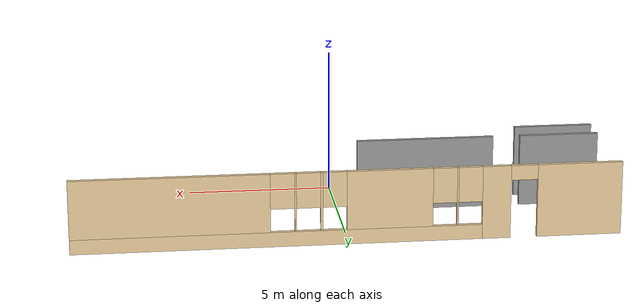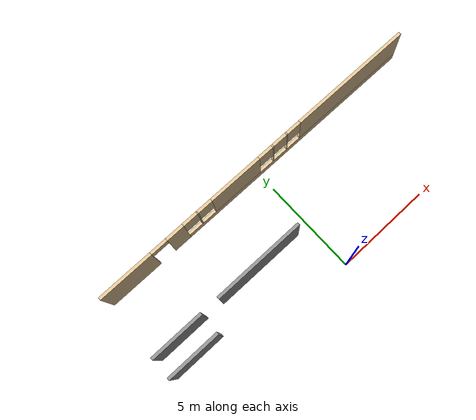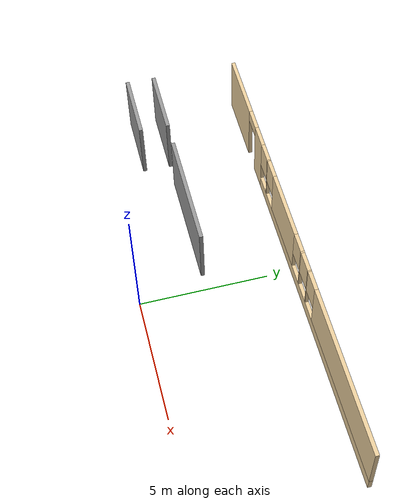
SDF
<sdf version="1.6">
 <model name="melgar_house">
  <link name="Wall_44">
   <pose>0.00354 6.025 0 0 -0 0</pose>
   <visual name="Wall_44_Visual_0">
    <pose>-7.72215 0 1.25 0 -0 0</pose>
    <geometry><box><size>2.85569 0.15 2.5</size></box></geometry>
    <material>
     <script><uri>file://media/materials/scripts/gazebo.material</uri><name>Gazebo/Grey</name></script>
     <ambient>0.921569 0.807843 0.615686 1</ambient>
     <shader type="pixel"/>
     <diffuse>0.7 0.7 0.7 1</diffuse>
     <specular>0.01 0.01 0.01 1</specular>
     <emissive>0 0 0 1</emissive>
    </material>
    <meta><layer>0</layer></meta>
   </visual>
   <visual name="Wall_44_Visual_1">
    <pose>-4.91854 0 1.25 0 -0 0</pose>
    <geometry><box><size>0.951528 0.15 2.5</size></box></geometry>
    <material>
     <script><uri>file://media/materials/scripts/gazebo.material</uri><name>Gazebo/Grey</name></script>
     <ambient>0.921569 0.807843 0.615686 1</ambient>
     <shader type="pixel"/>
     <diffuse>0.7 0.7 0.7 1</diffuse>
     <specular>0.01 0.01 0.01 1</specular>
     <emissive>0 0 0 1</emissive>
    </material>
    <meta><layer>0</layer></meta>
   </visual>
   <visual name="Wall_44_Visual_2">
    <pose>2.35361 0 0.25 0 -0 0</pose>
    <geometry><box><size>13.5928 0.15 0.5</size></box></geometry>
    <material>
     <script><uri>file://media/materials/scripts/gazebo.material</uri><name>Gazebo/Grey</name></script>
     <ambient>0.921569 0.807843 0.615686 1</ambient>
     <shader type="pixel"/>
     <diffuse>0.7 0.7 0.7 1</diffuse>
     <specular>0.01 0.01 0.01 1</specular>
     <emissive>0 0 0 1</emissive>
    </material>
    <meta><layer>0</layer></meta>
   </visual>
   <visual name="Wall_44_Visual_3">
    <pose>-3.61514 0 1.5 0 -0 0</pose>
    <geometry><box><size>0.055271 0.15 2</size></box></geometry>
    <material>
     <script><uri>file://media/materials/scripts/gazebo.material</uri><name>Gazebo/Grey</name></script>
     <ambient>0.921569 0.807843 0.615686 1</ambient>
     <shader type="pixel"/>
     <diffuse>0.7 0.7 0.7 1</diffuse>
     <specular>0.01 0.01 0.01 1</specular>
     <emissive>0 0 0 1</emissive>
    </material>
    <meta><layer>0</layer></meta>
   </visual>
   <visual name="Wall_44_Visual_4">
    <pose>-1.35868 0 1.5 0 -0 0</pose>
    <geometry><box><size>2.85765 0.15 2</size></box></geometry>
    <material>
     <script><uri>file://media/materials/scripts/gazebo.material</uri><name>Gazebo/Grey</name></script>
     <ambient>0.921569 0.807843 0.615686 1</ambient>
     <shader type="pixel"/>
     <diffuse>0.7 0.7 0.7 1</diffuse>
     <specular>0.01 0.01 0.01 1</specular>
     <emissive>0 0 0 1</emissive>
    </material>
    <meta><layer>0</layer></meta>
   </visual>
   <visual name="Wall_44_Visual_5">
    <pose>0.906874 0 1.5 0 -0 0</pose>
    <geometry><box><size>0.073468 0.15 2</size></box></geometry>
    <material>
     <script><uri>file://media/materials/scripts/gazebo.material</uri><name>Gazebo/Grey</name></script>
     <ambient>0.921569 0.807843 0.615686 1</ambient>
     <shader type="pixel"/>
     <diffuse>0.7 0.7 0.7 1</diffuse>
     <specular>0.01 0.01 0.01 1</specular>
     <emissive>0 0 0 1</emissive>
    </material>
    <meta><layer>0</layer></meta>
   </visual>
   <visual name="Wall_44_Visual_6">
    <pose>1.77124 0 1.5 0 -0 0</pose>
    <geometry><box><size>0.055271 0.15 2</size></box></geometry>
    <material>
     <script><uri>file://media/materials/scripts/gazebo.material</uri><name>Gazebo/Grey</name></script>
     <ambient>0.921569 0.807843 0.615686 1</ambient>
     <shader type="pixel"/>
     <diffuse>0.7 0.7 0.7 1</diffuse>
     <specular>0.01 0.01 0.01 1</specular>
     <emissive>0 0 0 1</emissive>
    </material>
    <meta><layer>0</layer></meta>
   </visual>
   <visual name="Wall_44_Visual_7">
    <pose>5.87444 0 1.5 0 -0 0</pose>
    <geometry><box><size>6.55112 0.15 2</size></box></geometry>
    <material>
     <script><uri>file://media/materials/scripts/gazebo.material</uri><name>Gazebo/Grey</name></script>
     <ambient>0.921569 0.807843 0.615686 1</ambient>
     <shader type="pixel"/>
     <diffuse>0.7 0.7 0.7 1</diffuse>
     <specular>0.01 0.01 0.01 1</specular>
     <emissive>0 0 0 1</emissive>
    </material>
    <meta><layer>0</layer></meta>
   </visual>
   <visual name="Wall_44_Visual_8">
    <pose>-4.04278 0 1.9 0 -0 0</pose>
    <geometry><box><size>0.8 0.15 1.2</size></box></geometry>
    <material>
     <script><uri>file://media/materials/scripts/gazebo.material</uri><name>Gazebo/Grey</name></script>
     <ambient>0.921569 0.807843 0.615686 1</ambient>
     <shader type="pixel"/>
     <diffuse>0.7 0.7 0.7 1</diffuse>
     <specular>0.01 0.01 0.01 1</specular>
     <emissive>0 0 0 1</emissive>
    </material>
    <meta><layer>0</layer></meta>
   </visual>
   <visual name="Wall_44_Visual_9">
    <pose>-3.18751 0 1.9 0 -0 0</pose>
    <geometry><box><size>0.8 0.15 1.2</size></box></geometry>
    <material>
     <script><uri>file://media/materials/scripts/gazebo.material</uri><name>Gazebo/Grey</name></script>
     <ambient>0.921569 0.807843 0.615686 1</ambient>
     <shader type="pixel"/>
     <diffuse>0.7 0.7 0.7 1</diffuse>
     <specular>0.01 0.01 0.01 1</specular>
     <emissive>0 0 0 1</emissive>
    </material>
    <meta><layer>0</layer></meta>
   </visual>
   <visual name="Wall_44_Visual_10">
    <pose>0.47014 0 1.9 0 -0 0</pose>
    <geometry><box><size>0.8 0.15 1.2</size></box></geometry>
    <material>
     <script><uri>file://media/materials/scripts/gazebo.material</uri><name>Gazebo/Grey</name></script>
     <ambient>0.921569 0.807843 0.615686 1</ambient>
     <shader type="pixel"/>
     <diffuse>0.7 0.7 0.7 1</diffuse>
     <specular>0.01 0.01 0.01 1</specular>
     <emissive>0 0 0 1</emissive>
    </material>
    <meta><layer>0</layer></meta>
   </visual>
   <visual name="Wall_44_Visual_11">
    <pose>1.34361 0 1.9 0 -0 0</pose>
    <geometry><box><size>0.8 0.15 1.2</size></box></geometry>
    <material>
     <script><uri>file://media/materials/scripts/gazebo.material</uri><name>Gazebo/Grey</name></script>
     <ambient>0.921569 0.807843 0.615686 1</ambient>
     <shader type="pixel"/>
     <diffuse>0.7 0.7 0.7 1</diffuse>
     <specular>0.01 0.01 0.01 1</specular>
     <emissive>0 0 0 1</emissive>
    </material>
    <meta><layer>0</layer></meta>
   </visual>
   <visual name="Wall_44_Visual_12">
    <pose>2.19888 0 1.9 0 -0 0</pose>
    <geometry><box><size>0.8 0.15 1.2</size></box></geometry>
    <material>
     <script><uri>file://media/materials/scripts/gazebo.material</uri><name>Gazebo/Grey</name></script>
     <ambient>0.921569 0.807843 0.615686 1</ambient>
     <shader type="pixel"/>
     <diffuse>0.7 0.7 0.7 1</diffuse>
     <specular>0.01 0.01 0.01 1</specular>
     <emissive>0 0 0 1</emissive>
    </material>
    <meta><layer>0</layer></meta>
   </visual>
   <visual name="Wall_44_Visual_13">
    <pose>-5.84431 0 2.25 0 -0 0</pose>
    <geometry><box><size>0.9 0.15 0.5</size></box></geometry>
    <material>
     <script><uri>file://media/materials/scripts/gazebo.material</uri><name>Gazebo/Grey</name></script>
     <ambient>0.921569 0.807843 0.615686 1</ambient>
     <shader type="pixel"/>
     <diffuse>0.7 0.7 0.7 1</diffuse>
     <specular>0.01 0.01 0.01 1</specular>
     <emissive>0 0 0 1</emissive>
    </material>
    <meta><layer>0</layer></meta>
   </visual>
   <collision name="Wall_44_Collision_0">
    <pose>-7.72215 0 1.25 0 -0 0</pose>
    <geometry><box><size>2.85569 0.15 2.5</size></box></geometry>
    <surface>
     <friction>
      <ode><mu>1</mu><mu2>1</mu2><fdir1>0 0 0</fdir1><slip1>0</slip1><slip2>0</slip2></ode>
      <torsional>
       <coefficient>1</coefficient>
       <patch_radius>0</patch_radius>
       <surface_radius>0</surface_radius>
       <use_patch_radius>1</use_patch_radius>
       <ode><slip>0</slip></ode>
      </torsional>
     </friction>
     <bounce><restitution_coefficient>0</restitution_coefficient><threshold>1e+06</threshold></bounce>
     <contact>
      <collide_without_contact>0</collide_without_contact>
      <collide_without_contact_bitmask>1</collide_without_contact_bitmask>
      <collide_bitmask>1</collide_bitmask>
      <ode>
       <soft_cfm>0</soft_cfm>
       <soft_erp>0.2</soft_erp>
       <kp>1e+13</kp>
       <kd>1</kd>
       <max_vel>0.01</max_vel>
       <min_depth>0</min_depth>
      </ode>
      <bullet>
       <split_impulse>1</split_impulse>
       <split_impulse_penetration_threshold>-0.01</split_impulse_penetration_threshold>
       <soft_cfm>0</soft_cfm>
       <soft_erp>0.2</soft_erp>
       <kp>1e+13</kp>
       <kd>1</kd>
      </bullet>
     </contact>
    </surface>
   </collision>
   <collision name="Wall_44_Collision_1">
    <pose>-4.91854 0 1.25 0 -0 0</pose>
    <geometry><box><size>0.951528 0.15 2.5</size></box></geometry>
    <surface>
     <friction>
      <ode><mu>1</mu><mu2>1</mu2><fdir1>0 0 0</fdir1><slip1>0</slip1><slip2>0</slip2></ode>
      <torsional>
       <coefficient>1</coefficient>
       <patch_radius>0</patch_radius>
       <surface_radius>0</surface_radius>
       <use_patch_radius>1</use_patch_radius>
       <ode><slip>0</slip></ode>
      </torsional>
     </friction>
     <bounce><restitution_coefficient>0</restitution_coefficient><threshold>1e+06</threshold></bounce>
     <contact>
      <collide_without_contact>0</collide_without_contact>
      <collide_without_contact_bitmask>1</collide_without_contact_bitmask>
      <collide_bitmask>1</collide_bitmask>
      <ode>
       <soft_cfm>0</soft_cfm>
       <soft_erp>0.2</soft_erp>
       <kp>1e+13</kp>
       <kd>1</kd>
       <max_vel>0.01</max_vel>
       <min_depth>0</min_depth>
      </ode>
      <bullet>
       <split_impulse>1</split_impulse>
       <split_impulse_penetration_threshold>-0.01</split_impulse_penetration_threshold>
       <soft_cfm>0</soft_cfm>
       <soft_erp>0.2</soft_erp>
       <kp>1e+13</kp>
       <kd>1</kd>
      </bullet>
     </contact>
    </surface>
   </collision>
   <collision name="Wall_44_Collision_2">
    <pose>2.35361 0 0.25 0 -0 0</pose>
    <geometry><box><size>13.5928 0.15 0.5</size></box></geometry>
    <surface>
     <friction>
      <ode><mu>1</mu><mu2>1</mu2><fdir1>0 0 0</fdir1><slip1>0</slip1><slip2>0</slip2></ode>
      <torsional>
       <coefficient>1</coefficient>
       <patch_radius>0</patch_radius>
       <surface_radius>0</surface_radius>
       <use_patch_radius>1</use_patch_radius>
       <ode><slip>0</slip></ode>
      </torsional>
     </friction>
     <bounce><restitution_coefficient>0</restitution_coefficient><threshold>1e+06</threshold></bounce>
     <contact>
      <collide_without_contact>0</collide_without_contact>
      <collide_without_contact_bitmask>1</collide_without_contact_bitmask>
      <collide_bitmask>1</collide_bitmask>
      <ode>
       <soft_cfm>0</soft_cfm>
       <soft_erp>0.2</soft_erp>
       <kp>1e+13</kp>
       <kd>1</kd>
       <max_vel>0.01</max_vel>
       <min_depth>0</min_depth>
      </ode>
      <bullet>
       <split_impulse>1</split_impulse>
       <split_impulse_penetration_threshold>-0.01</split_impulse_penetration_threshold>
       <soft_cfm>0</soft_cfm>
       <soft_erp>0.2</soft_erp>
       <kp>1e+13</kp>
       <kd>1</kd>
      </bullet>
     </contact>
    </surface>
   </collision>
   <collision name="Wall_44_Collision_3">
    <pose>-3.61514 0 1.5 0 -0 0</pose>
    <geometry><box><size>0.055271 0.15 2</size></box></geometry>
    <surface>
     <friction>
      <ode><mu>1</mu><mu2>1</mu2><fdir1>0 0 0</fdir1><slip1>0</slip1><slip2>0</slip2></ode>
      <torsional>
       <coefficient>1</coefficient>
       <patch_radius>0</patch_radius>
       <surface_radius>0</surface_radius>
       <use_patch_radius>1</use_patch_radius>
       <ode><slip>0</slip></ode>
      </torsional>
     </friction>
     <bounce><restitution_coefficient>0</restitution_coefficient><threshold>1e+06</threshold></bounce>
     <contact>
      <collide_without_contact>0</collide_without_contact>
      <collide_without_contact_bitmask>1</collide_without_contact_bitmask>
      <collide_bitmask>1</collide_bitmask>
      <ode>
       <soft_cfm>0</soft_cfm>
       <soft_erp>0.2</soft_erp>
       <kp>1e+13</kp>
       <kd>1</kd>
       <max_vel>0.01</max_vel>
       <min_depth>0</min_depth>
      </ode>
      <bullet>
       <split_impulse>1</split_impulse>
       <split_impulse_penetration_threshold>-0.01</split_impulse_penetration_threshold>
       <soft_cfm>0</soft_cfm>
       <soft_erp>0.2</soft_erp>
       <kp>1e+13</kp>
       <kd>1</kd>
      </bullet>
     </contact>
    </surface>
   </collision>
   <collision name="Wall_44_Collision_4">
    <pose>-1.35868 0 1.5 0 -0 0</pose>
    <geometry><box><size>2.85765 0.15 2</size></box></geometry>
    <surface>
     <friction>
      <ode><mu>1</mu><mu2>1</mu2><fdir1>0 0 0</fdir1><slip1>0</slip1><slip2>0</slip2></ode>
      <torsional>
       <coefficient>1</coefficient>
       <patch_radius>0</patch_radius>
       <surface_radius>0</surface_radius>
       <use_patch_radius>1</use_patch_radius>
       <ode><slip>0</slip></ode>
      </torsional>
     </friction>
     <bounce><restitution_coefficient>0</restitution_coefficient><threshold>1e+06</threshold></bounce>
     <contact>
      <collide_without_contact>0</collide_without_contact>
      <collide_without_contact_bitmask>1</collide_without_contact_bitmask>
      <collide_bitmask>1</collide_bitmask>
      <ode>
       <soft_cfm>0</soft_cfm>
       <soft_erp>0.2</soft_erp>
       <kp>1e+13</kp>
       <kd>1</kd>
       <max_vel>0.01</max_vel>
       <min_depth>0</min_depth>
      </ode>
      <bullet>
       <split_impulse>1</split_impulse>
       <split_impulse_penetration_threshold>-0.01</split_impulse_penetration_threshold>
       <soft_cfm>0</soft_cfm>
       <soft_erp>0.2</soft_erp>
       <kp>1e+13</kp>
       <kd>1</kd>
      </bullet>
     </contact>
    </surface>
   </collision>
   <collision name="Wall_44_Collision_6">
    <pose>1.77124 0 1.5 0 -0 0</pose>
    <geometry><box><size>0.055271 0.15 2</size></box></geometry>
    <surface>
     <friction>
      <ode><mu>1</mu><mu2>1</mu2><fdir1>0 0 0</fdir1><slip1>0</slip1><slip2>0</slip2></ode>
      <torsional>
       <coefficient>1</coefficient>
       <patch_radius>0</patch_radius>
       <surface_radius>0</surface_radius>
       <use_patch_radius>1</use_patch_radius>
       <ode><slip>0</slip></ode>
      </torsional>
     </friction>
     <bounce><restitution_coefficient>0</restitution_coefficient><threshold>1e+06</threshold></bounce>
     <contact>
      <collide_without_contact>0</collide_without_contact>
      <collide_without_contact_bitmask>1</collide_without_contact_bitmask>
      <collide_bitmask>1</collide_bitmask>
      <ode>
       <soft_cfm>0</soft_cfm>
       <soft_erp>0.2</soft_erp>
       <kp>1e+13</kp>
       <kd>1</kd>
       <max_vel>0.01</max_vel>
       <min_depth>0</min_depth>
      </ode>
      <bullet>
       <split_impulse>1</split_impulse>
       <split_impulse_penetration_threshold>-0.01</split_impulse_penetration_threshold>
       <soft_cfm>0</soft_cfm>
       <soft_erp>0.2</soft_erp>
       <kp>1e+13</kp>
       <kd>1</kd>
      </bullet>
     </contact>
    </surface>
   </collision>
   <collision name="Wall_44_Collision_9">
    <pose>-3.18751 0 1.9 0 -0 0</pose>
    <geometry><box><size>0.8 0.15 1.2</size></box></geometry>
    <surface>
     <friction>
      <ode><mu>1</mu><mu2>1</mu2><fdir1>0 0 0</fdir1><slip1>0</slip1><slip2>0</slip2></ode>
      <torsional>
       <coefficient>1</coefficient>
       <patch_radius>0</patch_radius>
       <surface_radius>0</surface_radius>
       <use_patch_radius>1</use_patch_radius>
       <ode><slip>0</slip></ode>
      </torsional>
     </friction>
     <bounce><restitution_coefficient>0</restitution_coefficient><threshold>1e+06</threshold></bounce>
     <contact>
      <collide_without_contact>0</collide_without_contact>
      <collide_without_contact_bitmask>1</collide_without_contact_bitmask>
      <collide_bitmask>1</collide_bitmask>
      <ode>
       <soft_cfm>0</soft_cfm>
       <soft_erp>0.2</soft_erp>
       <kp>1e+13</kp>
       <kd>1</kd>
       <max_vel>0.01</max_vel>
       <min_depth>0</min_depth>
      </ode>
      <bullet>
       <split_impulse>1</split_impulse>
       <split_impulse_penetration_threshold>-0.01</split_impulse_penetration_threshold>
       <soft_cfm>0</soft_cfm>
       <soft_erp>0.2</soft_erp>
       <kp>1e+13</kp>
       <kd>1</kd>
      </bullet>
     </contact>
    </surface>
   </collision>
   <collision name="Wall_44_Collision_5">
    <pose>0.906874 0 1.5 0 -0 0</pose>
    <geometry><box><size>0.073468 0.15 2</size></box></geometry>
    <surface>
     <friction>
      <ode><mu>1</mu><mu2>1</mu2><fdir1>0 0 0</fdir1><slip1>0</slip1><slip2>0</slip2></ode>
      <torsional>
       <coefficient>1</coefficient>
       <patch_radius>0</patch_radius>
       <surface_radius>0</surface_radius>
       <use_patch_radius>1</use_patch_radius>
       <ode><slip>0</slip></ode>
      </torsional>
     </friction>
     <bounce><restitution_coefficient>0</restitution_coefficient><threshold>1e+06</threshold></bounce>
     <contact>
      <collide_without_contact>0</collide_without_contact>
      <collide_without_contact_bitmask>1</collide_without_contact_bitmask>
      <collide_bitmask>1</collide_bitmask>
      <ode>
       <soft_cfm>0</soft_cfm>
       <soft_erp>0.2</soft_erp>
       <kp>1e+13</kp>
       <kd>1</kd>
       <max_vel>0.01</max_vel>
       <min_depth>0</min_depth>
      </ode>
      <bullet>
       <split_impulse>1</split_impulse>
       <split_impulse_penetration_threshold>-0.01</split_impulse_penetration_threshold>
       <soft_cfm>0</soft_cfm>
       <soft_erp>0.2</soft_erp>
       <kp>1e+13</kp>
       <kd>1</kd>
      </bullet>
     </contact>
    </surface>
   </collision>
   <collision name="Wall_44_Collision_7">
    <pose>5.87444 0 1.5 0 -0 0</pose>
    <geometry><box><size>6.55112 0.15 2</size></box></geometry>
    <surface>
     <friction>
      <ode><mu>1</mu><mu2>1</mu2><fdir1>0 0 0</fdir1><slip1>0</slip1><slip2>0</slip2></ode>
      <torsional>
       <coefficient>1</coefficient>
       <patch_radius>0</patch_radius>
       <surface_radius>0</surface_radius>
       <use_patch_radius>1</use_patch_radius>
       <ode><slip>0</slip></ode>
      </torsional>
     </friction>
     <bounce><restitution_coefficient>0</restitution_coefficient><threshold>1e+06</threshold></bounce>
     <contact>
      <collide_without_contact>0</collide_without_contact>
      <collide_without_contact_bitmask>1</collide_without_contact_bitmask>
      <collide_bitmask>1</collide_bitmask>
      <ode>
       <soft_cfm>0</soft_cfm>
       <soft_erp>0.2</soft_erp>
       <kp>1e+13</kp>
       <kd>1</kd>
       <max_vel>0.01</max_vel>
       <min_depth>0</min_depth>
      </ode>
      <bullet>
       <split_impulse>1</split_impulse>
       <split_impulse_penetration_threshold>-0.01</split_impulse_penetration_threshold>
       <soft_cfm>0</soft_cfm>
       <soft_erp>0.2</soft_erp>
       <kp>1e+13</kp>
       <kd>1</kd>
      </bullet>
     </contact>
    </surface>
   </collision>
   <collision name="Wall_44_Collision_8">
    <pose>-4.04278 0 1.9 0 -0 0</pose>
    <geometry><box><size>0.8 0.15 1.2</size></box></geometry>
    <surface>
     <friction>
      <ode><mu>1</mu><mu2>1</mu2><fdir1>0 0 0</fdir1><slip1>0</slip1><slip2>0</slip2></ode>
      <torsional>
       <coefficient>1</coefficient>
       <patch_radius>0</patch_radius>
       <surface_radius>0</surface_radius>
       <use_patch_radius>1</use_patch_radius>
       <ode><slip>0</slip></ode>
      </torsional>
     </friction>
     <bounce><restitution_coefficient>0</restitution_coefficient><threshold>1e+06</threshold></bounce>
     <contact>
      <collide_without_contact>0</collide_without_contact>
      <collide_without_contact_bitmask>1</collide_without_contact_bitmask>
      <collide_bitmask>1</collide_bitmask>
      <ode>
       <soft_cfm>0</soft_cfm>
       <soft_erp>0.2</soft_erp>
       <kp>1e+13</kp>
       <kd>1</kd>
       <max_vel>0.01</max_vel>
       <min_depth>0</min_depth>
      </ode>
      <bullet>
       <split_impulse>1</split_impulse>
       <split_impulse_penetration_threshold>-0.01</split_impulse_penetration_threshold>
       <soft_cfm>0</soft_cfm>
       <soft_erp>0.2</soft_erp>
       <kp>1e+13</kp>
       <kd>1</kd>
      </bullet>
     </contact>
    </surface>
   </collision>
   <collision name="Wall_44_Collision_11">
    <pose>1.34361 0 1.9 0 -0 0</pose>
    <geometry><box><size>0.8 0.15 1.2</size></box></geometry>
    <surface>
     <friction>
      <ode><mu>1</mu><mu2>1</mu2><fdir1>0 0 0</fdir1><slip1>0</slip1><slip2>0</slip2></ode>
      <torsional>
       <coefficient>1</coefficient>
       <patch_radius>0</patch_radius>
       <surface_radius>0</surface_radius>
       <use_patch_radius>1</use_patch_radius>
       <ode><slip>0</slip></ode>
      </torsional>
     </friction>
     <bounce><restitution_coefficient>0</restitution_coefficient><threshold>1e+06</threshold></bounce>
     <contact>
      <collide_without_contact>0</collide_without_contact>
      <collide_without_contact_bitmask>1</collide_without_contact_bitmask>
      <collide_bitmask>1</collide_bitmask>
      <ode>
       <soft_cfm>0</soft_cfm>
       <soft_erp>0.2</soft_erp>
       <kp>1e+13</kp>
       <kd>1</kd>
       <max_vel>0.01</max_vel>
       <min_depth>0</min_depth>
      </ode>
      <bullet>
       <split_impulse>1</split_impulse>
       <split_impulse_penetration_threshold>-0.01</split_impulse_penetration_threshold>
       <soft_cfm>0</soft_cfm>
       <soft_erp>0.2</soft_erp>
       <kp>1e+13</kp>
       <kd>1</kd>
      </bullet>
     </contact>
    </surface>
   </collision>
   <collision name="Wall_44_Collision_10">
    <pose>0.47014 0 1.9 0 -0 0</pose>
    <geometry><box><size>0.8 0.15 1.2</size></box></geometry>
    <surface>
     <friction>
      <ode><mu>1</mu><mu2>1</mu2><fdir1>0 0 0</fdir1><slip1>0</slip1><slip2>0</slip2></ode>
      <torsional>
       <coefficient>1</coefficient>
       <patch_radius>0</patch_radius>
       <surface_radius>0</surface_radius>
       <use_patch_radius>1</use_patch_radius>
       <ode><slip>0</slip></ode>
      </torsional>
     </friction>
     <bounce><restitution_coefficient>0</restitution_coefficient><threshold>1e+06</threshold></bounce>
     <contact>
      <collide_without_contact>0</collide_without_contact>
      <collide_without_contact_bitmask>1</collide_without_contact_bitmask>
      <collide_bitmask>1</collide_bitmask>
      <ode>
       <soft_cfm>0</soft_cfm>
       <soft_erp>0.2</soft_erp>
       <kp>1e+13</kp>
       <kd>1</kd>
       <max_vel>0.01</max_vel>
       <min_depth>0</min_depth>
      </ode>
      <bullet>
       <split_impulse>1</split_impulse>
       <split_impulse_penetration_threshold>-0.01</split_impulse_penetration_threshold>
       <soft_cfm>0</soft_cfm>
       <soft_erp>0.2</soft_erp>
       <kp>1e+13</kp>
       <kd>1</kd>
      </bullet>
     </contact>
    </surface>
   </collision>
   <collision name="Wall_44_Collision_12">
    <pose>2.19888 0 1.9 0 -0 0</pose>
    <geometry><box><size>0.8 0.15 1.2</size></box></geometry>
    <surface>
     <friction>
      <ode><mu>1</mu><mu2>1</mu2><fdir1>0 0 0</fdir1><slip1>0</slip1><slip2>0</slip2></ode>
      <torsional>
       <coefficient>1</coefficient>
       <patch_radius>0</patch_radius>
       <surface_radius>0</surface_radius>
       <use_patch_radius>1</use_patch_radius>
       <ode><slip>0</slip></ode>
      </torsional>
     </friction>
     <bounce><restitution_coefficient>0</restitution_coefficient><threshold>1e+06</threshold></bounce>
     <contact>
      <collide_without_contact>0</collide_without_contact>
      <collide_without_contact_bitmask>1</collide_without_contact_bitmask>
      <collide_bitmask>1</collide_bitmask>
      <ode>
       <soft_cfm>0</soft_cfm>
       <soft_erp>0.2</soft_erp>
       <kp>1e+13</kp>
       <kd>1</kd>
       <max_vel>0.01</max_vel>
       <min_depth>0</min_depth>
      </ode>
      <bullet>
       <split_impulse>1</split_impulse>
       <split_impulse_penetration_threshold>-0.01</split_impulse_penetration_threshold>
       <soft_cfm>0</soft_cfm>
       <soft_erp>0.2</soft_erp>
       <kp>1e+13</kp>
       <kd>1</kd>
      </bullet>
     </contact>
    </surface>
   </collision>
   <collision name="Wall_44_Collision_13">
    <pose>-5.84431 0 2.25 0 -0 0</pose>
    <geometry><box><size>0.9 0.15 0.5</size></box></geometry>
    <surface>
     <friction>
      <ode><mu>1</mu><mu2>1</mu2><fdir1>0 0 0</fdir1><slip1>0</slip1><slip2>0</slip2></ode>
      <torsional>
       <coefficient>1</coefficient>
       <patch_radius>0</patch_radius>
       <surface_radius>0</surface_radius>
       <use_patch_radius>1</use_patch_radius>
       <ode><slip>0</slip></ode>
      </torsional>
     </friction>
     <bounce><restitution_coefficient>0</restitution_coefficient><threshold>1e+06</threshold></bounce>
     <contact>
      <collide_without_contact>0</collide_without_contact>
      <collide_without_contact_bitmask>1</collide_without_contact_bitmask>
      <collide_bitmask>1</collide_bitmask>
      <ode>
       <soft_cfm>0</soft_cfm>
       <soft_erp>0.2</soft_erp>
       <kp>1e+13</kp>
       <kd>1</kd>
       <max_vel>0.01</max_vel>
       <min_depth>0</min_depth>
      </ode>
      <bullet>
       <split_impulse>1</split_impulse>
       <split_impulse_penetration_threshold>-0.01</split_impulse_penetration_threshold>
       <soft_cfm>0</soft_cfm>
       <soft_erp>0.2</soft_erp>
       <kp>1e+13</kp>
       <kd>1</kd>
      </bullet>
     </contact>
    </surface>
   </collision>
  </link>
  <link name="Wall_52">
   <pose>-7.75071 2.61434 0 0 -0 0</pose>
   <visual name="Wall_52_Visual">
    <pose>0 0 1.25 0 -0 0</pose>
    <geometry><box><size>2.75 0.15 2.5</size></box></geometry>
    <material>
     <script><uri>file://media/materials/scripts/gazebo.material</uri><name>Gazebo/Grey</name></script>
     <ambient>1 1 1 1</ambient>
     <shader type="pixel"/>
     <diffuse>0.7 0.7 0.7 1</diffuse>
     <specular>0.01 0.01 0.01 1</specular>
     <emissive>0 0 0 1</emissive>
    </material>
    <meta><layer>0</layer></meta>
   </visual>
   <collision name="Wall_52_Collision">
    <pose>0 0 1.25 0 -0 0</pose>
    <geometry><box><size>2.75 0.15 2.5</size></box></geometry>
    <surface>
     <friction>
      <ode><mu>1</mu><mu2>1</mu2><fdir1>0 0 0</fdir1><slip1>0</slip1><slip2>0</slip2></ode>
      <torsional>
       <coefficient>1</coefficient>
       <patch_radius>0</patch_radius>
       <surface_radius>0</surface_radius>
       <use_patch_radius>1</use_patch_radius>
       <ode><slip>0</slip></ode>
      </torsional>
     </friction>
     <bounce><restitution_coefficient>0</restitution_coefficient><threshold>1e+06</threshold></bounce>
     <contact>
      <collide_without_contact>0</collide_without_contact>
      <collide_without_contact_bitmask>1</collide_without_contact_bitmask>
      <collide_bitmask>1</collide_bitmask>
      <ode>
       <soft_cfm>0</soft_cfm>
       <soft_erp>0.2</soft_erp>
       <kp>1e+13</kp>
       <kd>1</kd>
       <max_vel>0.01</max_vel>
       <min_depth>0</min_depth>
      </ode>
      <bullet>
       <split_impulse>1</split_impulse>
       <split_impulse_penetration_threshold>-0.01</split_impulse_penetration_threshold>
       <soft_cfm>0</soft_cfm>
       <soft_erp>0.2</soft_erp>
       <kp>1e+13</kp>
       <kd>1</kd>
      </bullet>
     </contact>
    </surface>
   </collision>
  </link>
  <link name="Wall_54">
   <pose>-3.05071 2.61434 0 0 -0 0</pose>
   <visual name="Wall_54_Visual">
    <pose>0 0 1.25 0 -0 0</pose>
    <geometry><box><size>4.75 0.15 2.5</size></box></geometry>
    <material>
     <script><uri>file://media/materials/scripts/gazebo.material</uri><name>Gazebo/Grey</name></script>
     <ambient>1 1 1 1</ambient>
     <shader type="pixel"/>
     <diffuse>0.7 0.7 0.7 1</diffuse>
     <specular>0.01 0.01 0.01 1</specular>
     <emissive>0 0 0 1</emissive>
    </material>
    <meta><layer>0</layer></meta>
   </visual>
   <collision name="Wall_54_Collision">
    <pose>0 0 1.25 0 -0 0</pose>
    <geometry><box><size>4.75 0.15 2.5</size></box></geometry>
    <surface>
     <friction>
      <ode><mu>1</mu><mu2>1</mu2><fdir1>0 0 0</fdir1><slip1>0</slip1><slip2>0</slip2></ode>
      <torsional>
       <coefficient>1</coefficient>
       <patch_radius>0</patch_radius>
       <surface_radius>0</surface_radius>
       <use_patch_radius>1</use_patch_radius>
       <ode><slip>0</slip></ode>
      </torsional>
     </friction>
     <bounce><restitution_coefficient>0</restitution_coefficient><threshold>1e+06</threshold></bounce>
     <contact>
      <collide_without_contact>0</collide_without_contact>
      <collide_without_contact_bitmask>1</collide_without_contact_bitmask>
      <collide_bitmask>1</collide_bitmask>
      <ode>
       <soft_cfm>0</soft_cfm>
       <soft_erp>0.2</soft_erp>
       <kp>1e+13</kp>
       <kd>1</kd>
       <max_vel>0.01</max_vel>
       <min_depth>0</min_depth>
      </ode>
      <bullet>
       <split_impulse>1</split_impulse>
       <split_impulse_penetration_threshold>-0.01</split_impulse_penetration_threshold>
       <soft_cfm>0</soft_cfm>
       <soft_erp>0.2</soft_erp>
       <kp>1e+13</kp>
       <kd>1</kd>
      </bullet>
     </contact>
    </surface>
   </collision>
  </link>
  <link name="Wall_56">
   <pose>-7.77854 1.52885 0 0 -0 0</pose>
   <visual name="Wall_56_Visual">
    <pose>0 0 1.25 0 -0 0</pose>
    <geometry><box><size>2.75 0.15 2.5</size></box></geometry>
    <material>
     <script><uri>file://media/materials/scripts/gazebo.material</uri><name>Gazebo/Grey</name></script>
     <ambient>1 1 1 1</ambient>
     <shader type="pixel"/>
     <diffuse>0.7 0.7 0.7 1</diffuse>
     <specular>0.01 0.01 0.01 1</specular>
     <emissive>0 0 0 1</emissive>
    </material>
    <meta><layer>0</layer></meta>
   </visual>
   <collision name="Wall_56_Collision">
    <pose>0 0 1.25 0 -0 0</pose>
    <geometry><box><size>2.75 0.15 2.5</size></box></geometry>
    <surface>
     <friction>
      <ode><mu>1</mu><mu2>1</mu2><fdir1>0 0 0</fdir1><slip1>0</slip1><slip2>0</slip2></ode>
      <torsional>
       <coefficient>1</coefficient>
       <patch_radius>0</patch_radius>
       <surface_radius>0</surface_radius>
       <use_patch_radius>1</use_patch_radius>
       <ode><slip>0</slip></ode>
      </torsional>
     </friction>
     <bounce><restitution_coefficient>0</restitution_coefficient><threshold>1e+06</threshold></bounce>
     <contact>
      <collide_without_contact>0</collide_without_contact>
      <collide_without_contact_bitmask>1</collide_without_contact_bitmask>
      <collide_bitmask>1</collide_bitmask>
      <ode>
       <soft_cfm>0</soft_cfm>
       <soft_erp>0.2</soft_erp>
       <kp>1e+13</kp>
       <kd>1</kd>
       <max_vel>0.01</max_vel>
       <min_depth>0</min_depth>
      </ode>
      <bullet>
       <split_impulse>1</split_impulse>
       <split_impulse_penetration_threshold>-0.01</split_impulse_penetration_threshold>
       <soft_cfm>0</soft_cfm>
       <soft_erp>0.2</soft_erp>
       <kp>1e+13</kp>
       <kd>1</kd>
      </bullet>
     </contact>
    </surface>
   </collision>
  </link>
  <static>1</static>
 </model>
</sdf>
